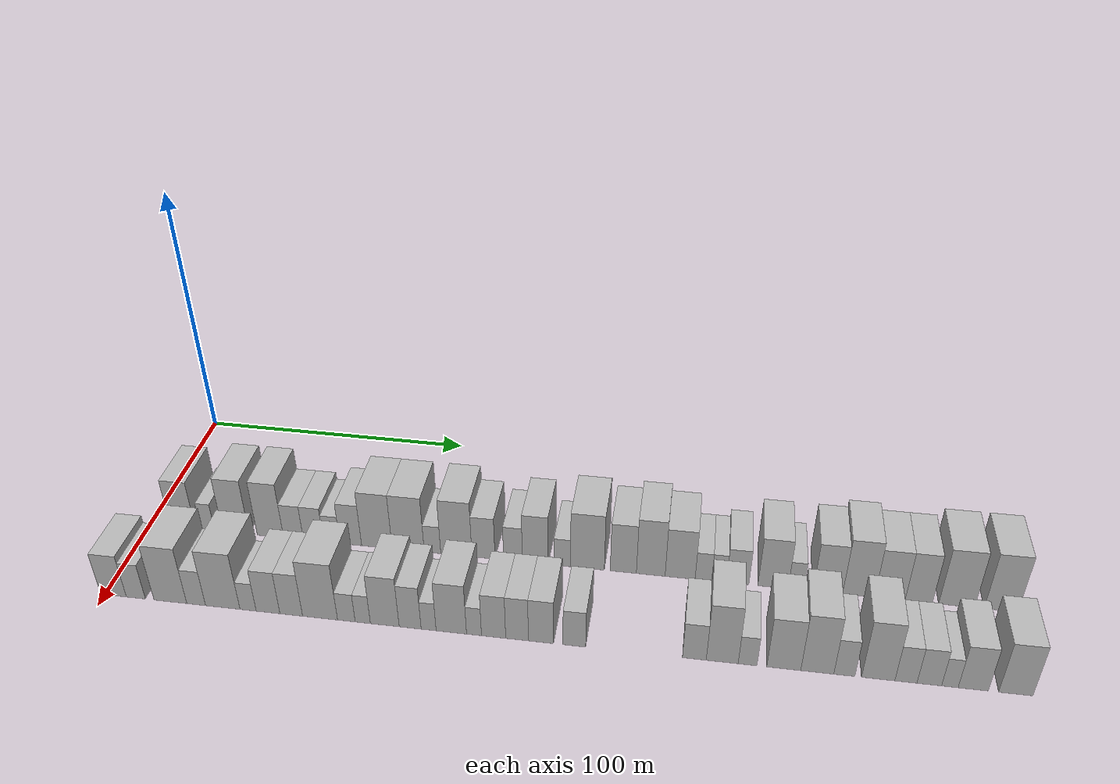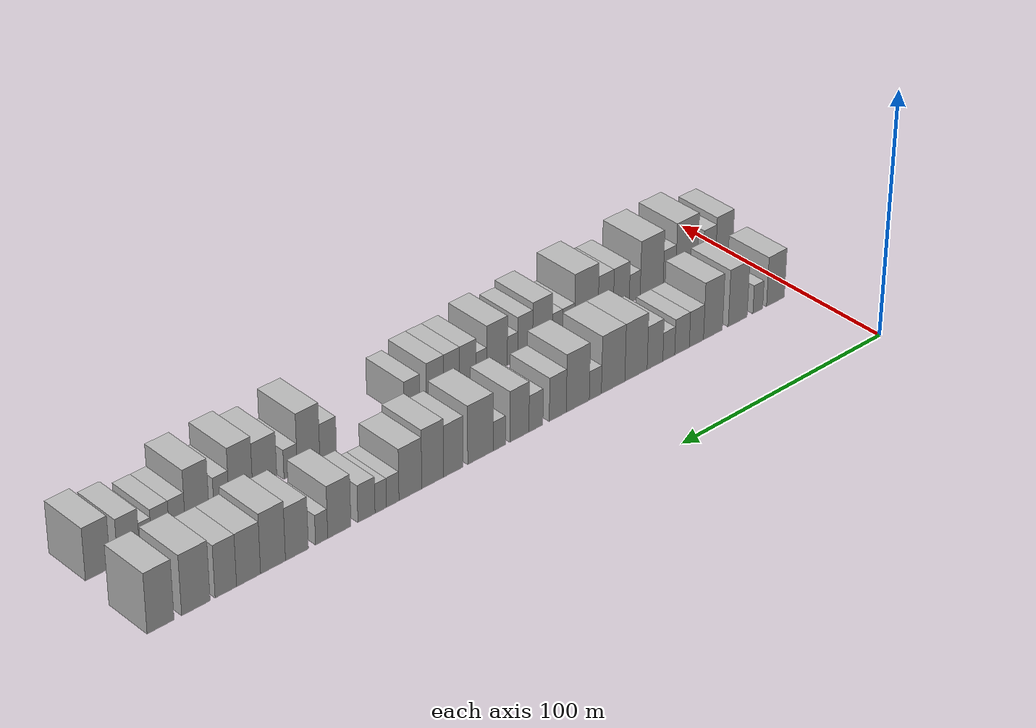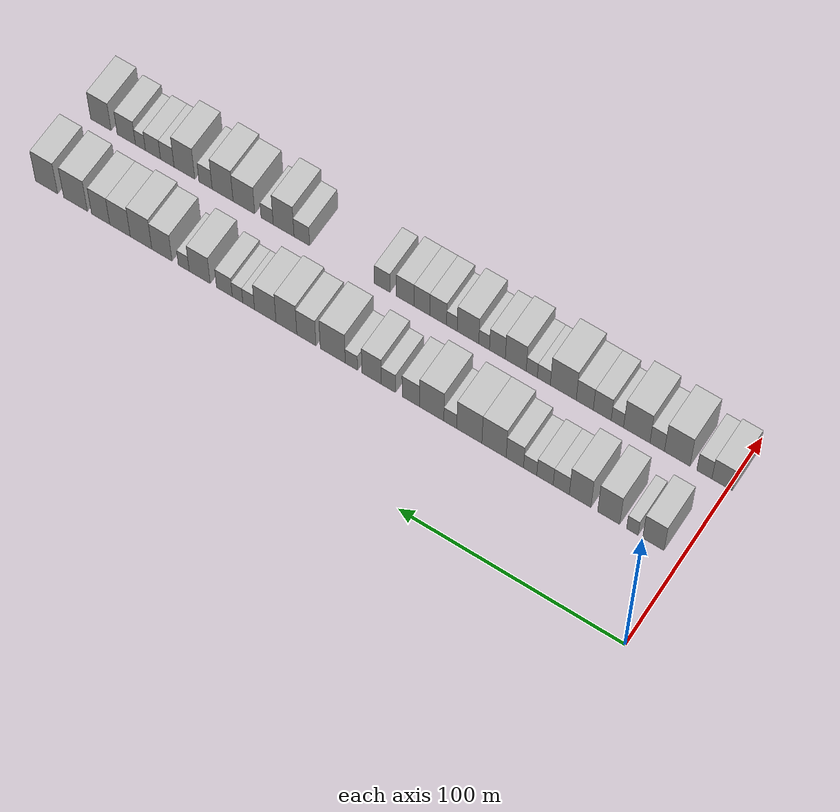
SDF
<sdf version="1.6">
 <world name="default">
  <model name="building_32">
   <static>1</static>
   <pose>50.0000 12.0339 0 0.000000 0.000000 0.000000</pose>
   <link name="link">
    <pose>0 0 10.50 0 0 0</pose>
    <collision name="collision"><geometry><box><size>20.0000 9.3732 21.0000</size></box></geometry></collision>
    <visual name="visual">
     <cast_shadows>0</cast_shadows>
     <geometry><box><size>20.0000 9.3732 21.0000</size></box></geometry>
     <material>
      <script>
       <uri>model://HANNAS_wall/materials/scripts</uri>
       <uri>model://HANNAS_wall/materials/textures</uri>
       <name>vrc/HANNAS_wall</name>
      </script>
     </material>
    </visual>
   </link>
  </model>
  <model name="building_33">
   <static>1</static>
   <pose>50.0000 21.2638 0 0.000000 0.000000 0.000000</pose>
   <link name="link">
    <pose>0 0 6.00 0 0 0</pose>
    <collision name="collision"><geometry><box><size>20.0000 5.0866 12.0000</size></box></geometry></collision>
    <visual name="visual">
     <cast_shadows>0</cast_shadows>
     <geometry><box><size>20.0000 5.0866 12.0000</size></box></geometry>
     <material>
      <script>
       <uri>model://HANNAS_wall/materials/scripts</uri>
       <uri>model://HANNAS_wall/materials/textures</uri>
       <name>vrc/HANNAS_wall</name>
      </script>
     </material>
    </visual>
   </link>
  </model>
  <model name="building_34">
   <static>1</static>
   <pose>50.0000 31.6727 0 0.000000 0.000000 0.000000</pose>
   <link name="link">
    <pose>0 0 12.00 0 0 0</pose>
    <collision name="collision"><geometry><box><size>20.0000 9.7312 24.0000</size></box></geometry></collision>
    <visual name="visual">
     <cast_shadows>0</cast_shadows>
     <geometry><box><size>20.0000 9.7312 24.0000</size></box></geometry>
     <material>
      <script>
       <uri>model://HANNAS_wall/materials/scripts</uri>
       <uri>model://HANNAS_wall/materials/textures</uri>
       <name>vrc/HANNAS_wall</name>
      </script>
     </material>
    </visual>
   </link>
  </model>
  <model name="building_35">
   <static>1</static>
   <pose>50.0000 44.3446 0 0.000000 0.000000 0.000000</pose>
   <link name="link">
    <pose>0 0 12.00 0 0 0</pose>
    <collision name="collision"><geometry><box><size>20.0000 9.6127 24.0000</size></box></geometry></collision>
    <visual name="visual">
     <cast_shadows>0</cast_shadows>
     <geometry><box><size>20.0000 9.6127 24.0000</size></box></geometry>
     <material>
      <script>
       <uri>model://HANNAS_wall/materials/scripts</uri>
       <uri>model://HANNAS_wall/materials/textures</uri>
       <name>vrc/HANNAS_wall</name>
      </script>
     </material>
    </visual>
   </link>
  </model>
  <model name="building_36">
   <static>1</static>
   <pose>50.0000 52.7396 0 0.000000 0.000000 0.000000</pose>
   <link name="link">
    <pose>0 0 7.50 0 0 0</pose>
    <collision name="collision"><geometry><box><size>20.0000 7.1774 15.0000</size></box></geometry></collision>
    <visual name="visual">
     <cast_shadows>0</cast_shadows>
     <geometry><box><size>20.0000 7.1774 15.0000</size></box></geometry>
     <material>
      <script>
       <uri>model://HANNAS_wall/materials/scripts</uri>
       <uri>model://HANNAS_wall/materials/textures</uri>
       <name>vrc/HANNAS_wall</name>
      </script>
     </material>
    </visual>
   </link>
  </model>
  <model name="building_37">
   <static>1</static>
   <pose>50.0000 59.9838 0 0.000000 0.000000 0.000000</pose>
   <link name="link">
    <pose>0 0 7.50 0 0 0</pose>
    <collision name="collision"><geometry><box><size>20.0000 7.3109 15.0000</size></box></geometry></collision>
    <visual name="visual">
     <cast_shadows>0</cast_shadows>
     <geometry><box><size>20.0000 7.3109 15.0000</size></box></geometry>
     <material>
      <script>
       <uri>model://HANNAS_wall/materials/scripts</uri>
       <uri>model://HANNAS_wall/materials/textures</uri>
       <name>vrc/HANNAS_wall</name>
      </script>
     </material>
    </visual>
   </link>
  </model>
  <model name="building_38">
   <static>1</static>
   <pose>50.0000 66.6029 0 0.000000 0.000000 0.000000</pose>
   <link name="link">
    <pose>0 0 6.00 0 0 0</pose>
    <collision name="collision"><geometry><box><size>20.0000 5.9274 12.0000</size></box></geometry></collision>
    <visual name="visual">
     <cast_shadows>0</cast_shadows>
     <geometry><box><size>20.0000 5.9274 12.0000</size></box></geometry>
     <material>
      <script>
       <uri>model://HANNAS_wall/materials/scripts</uri>
       <uri>model://HANNAS_wall/materials/textures</uri>
       <name>vrc/HANNAS_wall</name>
      </script>
     </material>
    </visual>
   </link>
  </model>
  <model name="building_39">
   <static>1</static>
   <pose>50.0000 73.4541 0 0.000000 0.000000 0.000000</pose>
   <link name="link">
    <pose>0 0 9.00 0 0 0</pose>
    <collision name="collision"><geometry><box><size>20.0000 7.7750 18.0000</size></box></geometry></collision>
    <visual name="visual">
     <cast_shadows>0</cast_shadows>
     <geometry><box><size>20.0000 7.7750 18.0000</size></box></geometry>
     <material>
      <script>
       <uri>model://HANNAS_wall/materials/scripts</uri>
       <uri>model://HANNAS_wall/materials/textures</uri>
       <name>vrc/HANNAS_wall</name>
      </script>
     </material>
    </visual>
   </link>
  </model>
  <model name="building_40">
   <static>1</static>
   <pose>50.0000 82.8072 0 0.000000 0.000000 0.000000</pose>
   <link name="link">
    <pose>0 0 12.00 0 0 0</pose>
    <collision name="collision"><geometry><box><size>20.0000 10.9311 24.0000</size></box></geometry></collision>
    <visual name="visual">
     <cast_shadows>0</cast_shadows>
     <geometry><box><size>20.0000 10.9311 24.0000</size></box></geometry>
     <material>
      <script>
       <uri>model://HANNAS_wall/materials/scripts</uri>
       <uri>model://HANNAS_wall/materials/textures</uri>
       <name>vrc/HANNAS_wall</name>
      </script>
     </material>
    </visual>
   </link>
  </model>
  <model name="building_41">
   <static>1</static>
   <pose>50.0000 93.9608 0 0.000000 0.000000 0.000000</pose>
   <link name="link">
    <pose>0 0 12.00 0 0 0</pose>
    <collision name="collision"><geometry><box><size>20.0000 11.3762 24.0000</size></box></geometry></collision>
    <visual name="visual">
     <cast_shadows>0</cast_shadows>
     <geometry><box><size>20.0000 11.3762 24.0000</size></box></geometry>
     <material>
      <script>
       <uri>model://HANNAS_wall/materials/scripts</uri>
       <uri>model://HANNAS_wall/materials/textures</uri>
       <name>vrc/HANNAS_wall</name>
      </script>
     </material>
    </visual>
   </link>
  </model>
  <model name="building_42">
   <static>1</static>
   <pose>50.0000 102.5587 0 0.000000 0.000000 0.000000</pose>
   <link name="link">
    <pose>0 0 6.00 0 0 0</pose>
    <collision name="collision"><geometry><box><size>20.0000 5.8196 12.0000</size></box></geometry></collision>
    <visual name="visual">
     <cast_shadows>0</cast_shadows>
     <geometry><box><size>20.0000 5.8196 12.0000</size></box></geometry>
     <material>
      <script>
       <uri>model://HANNAS_wall/materials/scripts</uri>
       <uri>model://HANNAS_wall/materials/textures</uri>
       <name>vrc/HANNAS_wall</name>
      </script>
     </material>
    </visual>
   </link>
  </model>
  <model name="building_43">
   <static>1</static>
   <pose>50.0000 110.9548 0 0.000000 0.000000 0.000000</pose>
   <link name="link">
    <pose>0 0 12.00 0 0 0</pose>
    <collision name="collision"><geometry><box><size>20.0000 10.9727 24.0000</size></box></geometry></collision>
    <visual name="visual">
     <cast_shadows>0</cast_shadows>
     <geometry><box><size>20.0000 10.9727 24.0000</size></box></geometry>
     <material>
      <script>
       <uri>model://HANNAS_wall/materials/scripts</uri>
       <uri>model://HANNAS_wall/materials/textures</uri>
       <name>vrc/HANNAS_wall</name>
      </script>
     </material>
    </visual>
   </link>
  </model>
  <model name="building_44">
   <static>1</static>
   <pose>50.0000 120.4621 0 0.000000 0.000000 0.000000</pose>
   <link name="link">
    <pose>0 0 9.00 0 0 0</pose>
    <collision name="collision"><geometry><box><size>20.0000 8.0419 18.0000</size></box></geometry></collision>
    <visual name="visual">
     <cast_shadows>0</cast_shadows>
     <geometry><box><size>20.0000 8.0419 18.0000</size></box></geometry>
     <material>
      <script>
       <uri>model://HANNAS_wall/materials/scripts</uri>
       <uri>model://HANNAS_wall/materials/textures</uri>
       <name>vrc/HANNAS_wall</name>
      </script>
     </material>
    </visual>
   </link>
  </model>
  <model name="building_45">
   <static>1</static>
   <pose>50.0000 130.7386 0 0.000000 0.000000 0.000000</pose>
   <link name="link">
    <pose>0 0 7.50 0 0 0</pose>
    <collision name="collision"><geometry><box><size>20.0000 6.5112 15.0000</size></box></geometry></collision>
    <visual name="visual">
     <cast_shadows>0</cast_shadows>
     <geometry><box><size>20.0000 6.5112 15.0000</size></box></geometry>
     <material>
      <script>
       <uri>model://HANNAS_wall/materials/scripts</uri>
       <uri>model://HANNAS_wall/materials/textures</uri>
       <name>vrc/HANNAS_wall</name>
      </script>
     </material>
    </visual>
   </link>
  </model>
  <model name="building_46">
   <static>1</static>
   <pose>50.0000 138.4492 0 0.000000 0.000000 0.000000</pose>
   <link name="link">
    <pose>0 0 10.50 0 0 0</pose>
    <collision name="collision"><geometry><box><size>20.0000 8.9101 21.0000</size></box></geometry></collision>
    <visual name="visual">
     <cast_shadows>0</cast_shadows>
     <geometry><box><size>20.0000 8.9101 21.0000</size></box></geometry>
     <material>
      <script>
       <uri>model://HANNAS_wall/materials/scripts</uri>
       <uri>model://HANNAS_wall/materials/textures</uri>
       <name>vrc/HANNAS_wall</name>
      </script>
     </material>
    </visual>
   </link>
  </model>
  <model name="building_47">
   <static>1</static>
   <pose>50.0000 147.7427 0 0.000000 0.000000 0.000000</pose>
   <link name="link">
    <pose>0 0 6.00 0 0 0</pose>
    <collision name="collision"><geometry><box><size>20.0000 5.6769 12.0000</size></box></geometry></collision>
    <visual name="visual">
     <cast_shadows>0</cast_shadows>
     <geometry><box><size>20.0000 5.6769 12.0000</size></box></geometry>
     <material>
      <script>
       <uri>model://HANNAS_wall/materials/scripts</uri>
       <uri>model://HANNAS_wall/materials/textures</uri>
       <name>vrc/HANNAS_wall</name>
      </script>
     </material>
    </visual>
   </link>
  </model>
  <model name="building_48">
   <static>1</static>
   <pose>50.0000 156.3697 0 0.000000 0.000000 0.000000</pose>
   <link name="link">
    <pose>0 0 12.00 0 0 0</pose>
    <collision name="collision"><geometry><box><size>20.0000 11.5769 24.0000</size></box></geometry></collision>
    <visual name="visual">
     <cast_shadows>0</cast_shadows>
     <geometry><box><size>20.0000 11.5769 24.0000</size></box></geometry>
     <material>
      <script>
       <uri>model://HANNAS_wall/materials/scripts</uri>
       <uri>model://HANNAS_wall/materials/textures</uri>
       <name>vrc/HANNAS_wall</name>
      </script>
     </material>
    </visual>
   </link>
  </model>
  <model name="building_49">
   <static>1</static>
   <pose>50.0000 168.6002 0 0.000000 0.000000 0.000000</pose>
   <link name="link">
    <pose>0 0 10.50 0 0 0</pose>
    <collision name="collision"><geometry><box><size>20.0000 8.8840 21.0000</size></box></geometry></collision>
    <visual name="visual">
     <cast_shadows>0</cast_shadows>
     <geometry><box><size>20.0000 8.8840 21.0000</size></box></geometry>
     <material>
      <script>
       <uri>model://HANNAS_wall/materials/scripts</uri>
       <uri>model://HANNAS_wall/materials/textures</uri>
       <name>vrc/HANNAS_wall</name>
      </script>
     </material>
    </visual>
   </link>
  </model>
  <model name="building_50">
   <static>1</static>
   <pose>50.0000 177.8979 0 0.000000 0.000000 0.000000</pose>
   <link name="link">
    <pose>0 0 12.00 0 0 0</pose>
    <collision name="collision"><geometry><box><size>20.0000 9.7113 24.0000</size></box></geometry></collision>
    <visual name="visual">
     <cast_shadows>0</cast_shadows>
     <geometry><box><size>20.0000 9.7113 24.0000</size></box></geometry>
     <material>
      <script>
       <uri>model://HANNAS_wall/materials/scripts</uri>
       <uri>model://HANNAS_wall/materials/textures</uri>
       <name>vrc/HANNAS_wall</name>
      </script>
     </material>
    </visual>
   </link>
  </model>
  <model name="building_51">
   <static>1</static>
   <pose>50.0000 187.7875 0 0.000000 0.000000 0.000000</pose>
   <link name="link">
    <pose>0 0 10.50 0 0 0</pose>
    <collision name="collision"><geometry><box><size>20.0000 10.0679 21.0000</size></box></geometry></collision>
    <visual name="visual">
     <cast_shadows>0</cast_shadows>
     <geometry><box><size>20.0000 10.0679 21.0000</size></box></geometry>
     <material>
      <script>
       <uri>model://HANNAS_wall/materials/scripts</uri>
       <uri>model://HANNAS_wall/materials/textures</uri>
       <name>vrc/HANNAS_wall</name>
      </script>
     </material>
    </visual>
   </link>
  </model>
  <model name="building_52">
   <static>1</static>
   <pose>50.0000 195.5727 0 0.000000 0.000000 0.000000</pose>
   <link name="link">
    <pose>0 0 6.00 0 0 0</pose>
    <collision name="collision"><geometry><box><size>20.0000 5.5025 12.0000</size></box></geometry></collision>
    <visual name="visual">
     <cast_shadows>0</cast_shadows>
     <geometry><box><size>20.0000 5.5025 12.0000</size></box></geometry>
     <material>
      <script>
       <uri>model://HANNAS_wall/materials/scripts</uri>
       <uri>model://HANNAS_wall/materials/textures</uri>
       <name>vrc/HANNAS_wall</name>
      </script>
     </material>
    </visual>
   </link>
  </model>
  <model name="building_53">
   <static>1</static>
   <pose>50.0000 200.8041 0 0.000000 0.000000 0.000000</pose>
   <link name="link">
    <pose>0 0 6.00 0 0 0</pose>
    <collision name="collision"><geometry><box><size>20.0000 4.9603 12.0000</size></box></geometry></collision>
    <visual name="visual">
     <cast_shadows>0</cast_shadows>
     <geometry><box><size>20.0000 4.9603 12.0000</size></box></geometry>
     <material>
      <script>
       <uri>model://HANNAS_wall/materials/scripts</uri>
       <uri>model://HANNAS_wall/materials/textures</uri>
       <name>vrc/HANNAS_wall</name>
      </script>
     </material>
    </visual>
   </link>
  </model>
  <model name="building_54">
   <static>1</static>
   <pose>50.0000 206.9999 0 0.000000 0.000000 0.000000</pose>
   <link name="link">
    <pose>0 0 7.50 0 0 0</pose>
    <collision name="collision"><geometry><box><size>20.0000 7.4313 15.0000</size></box></geometry></collision>
    <visual name="visual">
     <cast_shadows>0</cast_shadows>
     <geometry><box><size>20.0000 7.4313 15.0000</size></box></geometry>
     <material>
      <script>
       <uri>model://HANNAS_wall/materials/scripts</uri>
       <uri>model://HANNAS_wall/materials/textures</uri>
       <name>vrc/HANNAS_wall</name>
      </script>
     </material>
    </visual>
   </link>
  </model>
  <model name="building_55">
   <static>1</static>
   <pose>50.0000 218.6773 0 0.000000 0.000000 0.000000</pose>
   <link name="link">
    <pose>0 0 10.50 0 0 0</pose>
    <collision name="collision"><geometry><box><size>20.0000 9.9233 21.0000</size></box></geometry></collision>
    <visual name="visual">
     <cast_shadows>0</cast_shadows>
     <geometry><box><size>20.0000 9.9233 21.0000</size></box></geometry>
     <material>
      <script>
       <uri>model://HANNAS_wall/materials/scripts</uri>
       <uri>model://HANNAS_wall/materials/textures</uri>
       <name>vrc/HANNAS_wall</name>
      </script>
     </material>
    </visual>
   </link>
  </model>
  <model name="building_56">
   <static>1</static>
   <pose>50.0000 226.2310 0 0.000000 0.000000 0.000000</pose>
   <link name="link">
    <pose>0 0 6.00 0 0 0</pose>
    <collision name="collision"><geometry><box><size>20.0000 5.1842 12.0000</size></box></geometry></collision>
    <visual name="visual">
     <cast_shadows>0</cast_shadows>
     <geometry><box><size>20.0000 5.1842 12.0000</size></box></geometry>
     <material>
      <script>
       <uri>model://HANNAS_wall/materials/scripts</uri>
       <uri>model://HANNAS_wall/materials/textures</uri>
       <name>vrc/HANNAS_wall</name>
      </script>
     </material>
    </visual>
   </link>
  </model>
  <model name="building_57">
   <static>1</static>
   <pose>50.0000 236.6335 0 0.000000 0.000000 0.000000</pose>
   <link name="link">
    <pose>0 0 10.50 0 0 0</pose>
    <collision name="collision"><geometry><box><size>20.0000 9.6206 21.0000</size></box></geometry></collision>
    <visual name="visual">
     <cast_shadows>0</cast_shadows>
     <geometry><box><size>20.0000 9.6206 21.0000</size></box></geometry>
     <material>
      <script>
       <uri>model://HANNAS_wall/materials/scripts</uri>
       <uri>model://HANNAS_wall/materials/textures</uri>
       <name>vrc/HANNAS_wall</name>
      </script>
     </material>
    </visual>
   </link>
  </model>
  <model name="building_58">
   <static>1</static>
   <pose>50.0000 246.6107 0 0.000000 0.000000 0.000000</pose>
   <link name="link">
    <pose>0 0 12.00 0 0 0</pose>
    <collision name="collision"><geometry><box><size>20.0000 10.3339 24.0000</size></box></geometry></collision>
    <visual name="visual">
     <cast_shadows>0</cast_shadows>
     <geometry><box><size>20.0000 10.3339 24.0000</size></box></geometry>
     <material>
      <script>
       <uri>model://HANNAS_wall/materials/scripts</uri>
       <uri>model://HANNAS_wall/materials/textures</uri>
       <name>vrc/HANNAS_wall</name>
      </script>
     </material>
    </visual>
   </link>
  </model>
  <model name="building_59">
   <static>1</static>
   <pose>50.0000 256.7192 0 0.000000 0.000000 0.000000</pose>
   <link name="link">
    <pose>0 0 10.50 0 0 0</pose>
    <collision name="collision"><geometry><box><size>20.0000 9.8830 21.0000</size></box></geometry></collision>
    <visual name="visual">
     <cast_shadows>0</cast_shadows>
     <geometry><box><size>20.0000 9.8830 21.0000</size></box></geometry>
     <material>
      <script>
       <uri>model://HANNAS_wall/materials/scripts</uri>
       <uri>model://HANNAS_wall/materials/textures</uri>
       <name>vrc/HANNAS_wall</name>
      </script>
     </material>
    </visual>
   </link>
  </model>
  <model name="building_60">
   <static>1</static>
   <pose>50.0000 266.0381 0 0.000000 0.000000 0.000000</pose>
   <link name="link">
    <pose>0 0 10.50 0 0 0</pose>
    <collision name="collision"><geometry><box><size>20.0000 8.7548 21.0000</size></box></geometry></collision>
    <visual name="visual">
     <cast_shadows>0</cast_shadows>
     <geometry><box><size>20.0000 8.7548 21.0000</size></box></geometry>
     <material>
      <script>
       <uri>model://HANNAS_wall/materials/scripts</uri>
       <uri>model://HANNAS_wall/materials/textures</uri>
       <name>vrc/HANNAS_wall</name>
      </script>
     </material>
    </visual>
   </link>
  </model>
  <model name="building_61">
   <static>1</static>
   <pose>50.0000 278.1423 0 0.000000 0.000000 0.000000</pose>
   <link name="link">
    <pose>0 0 12.00 0 0 0</pose>
    <collision name="collision"><geometry><box><size>20.0000 11.4537 24.0000</size></box></geometry></collision>
    <visual name="visual">
     <cast_shadows>0</cast_shadows>
     <geometry><box><size>20.0000 11.4537 24.0000</size></box></geometry>
     <material>
      <script>
       <uri>model://HANNAS_wall/materials/scripts</uri>
       <uri>model://HANNAS_wall/materials/textures</uri>
       <name>vrc/HANNAS_wall</name>
      </script>
     </material>
    </visual>
   </link>
  </model>
  <model name="building_62">
   <static>1</static>
   <pose>50.0000 292.2194 0 0.000000 0.000000 0.000000</pose>
   <link name="link">
    <pose>0 0 12.00 0 0 0</pose>
    <collision name="collision"><geometry><box><size>20.0000 10.7004 24.0000</size></box></geometry></collision>
    <visual name="visual">
     <cast_shadows>0</cast_shadows>
     <geometry><box><size>20.0000 10.7004 24.0000</size></box></geometry>
     <material>
      <script>
       <uri>model://HANNAS_wall/materials/scripts</uri>
       <uri>model://HANNAS_wall/materials/textures</uri>
       <name>vrc/HANNAS_wall</name>
      </script>
     </material>
    </visual>
   </link>
  </model>
  <model name="building_95">
   <static>1</static>
   <pose>85.0000 2.8340 0 0.000000 0.000000 0.000000</pose>
   <link name="link">
    <pose>0 0 9.00 0 0 0</pose>
    <collision name="collision"><geometry><box><size>20.0000 8.9990 18.0000</size></box></geometry></collision>
    <visual name="visual">
     <cast_shadows>0</cast_shadows>
     <geometry><box><size>20.0000 8.9990 18.0000</size></box></geometry>
     <material>
      <script>
       <uri>model://HANNAS_wall/materials/scripts</uri>
       <uri>model://HANNAS_wall/materials/textures</uri>
       <name>vrc/HANNAS_wall</name>
      </script>
     </material>
    </visual>
   </link>
  </model>
  <model name="building_96">
   <static>1</static>
   <pose>85.0000 10.6421 0 0.000000 0.000000 0.000000</pose>
   <link name="link">
    <pose>0 0 7.50 0 0 0</pose>
    <collision name="collision"><geometry><box><size>20.0000 6.6173 15.0000</size></box></geometry></collision>
    <visual name="visual">
     <cast_shadows>0</cast_shadows>
     <geometry><box><size>20.0000 6.6173 15.0000</size></box></geometry>
     <material>
      <script>
       <uri>model://HANNAS_wall/materials/scripts</uri>
       <uri>model://HANNAS_wall/materials/textures</uri>
       <name>vrc/HANNAS_wall</name>
      </script>
     </material>
    </visual>
   </link>
  </model>
  <model name="building_97">
   <static>1</static>
   <pose>85.0000 22.6172 0 0.000000 0.000000 0.000000</pose>
   <link name="link">
    <pose>0 0 12.00 0 0 0</pose>
    <collision name="collision"><geometry><box><size>20.0000 11.3329 24.0000</size></box></geometry></collision>
    <visual name="visual">
     <cast_shadows>0</cast_shadows>
     <geometry><box><size>20.0000 11.3329 24.0000</size></box></geometry>
     <material>
      <script>
       <uri>model://HANNAS_wall/materials/scripts</uri>
       <uri>model://HANNAS_wall/materials/textures</uri>
       <name>vrc/HANNAS_wall</name>
      </script>
     </material>
    </visual>
   </link>
  </model>
  <model name="building_98">
   <static>1</static>
   <pose>85.0000 31.5112 0 0.000000 0.000000 0.000000</pose>
   <link name="link">
    <pose>0 0 7.50 0 0 0</pose>
    <collision name="collision"><geometry><box><size>20.0000 6.4552 15.0000</size></box></geometry></collision>
    <visual name="visual">
     <cast_shadows>0</cast_shadows>
     <geometry><box><size>20.0000 6.4552 15.0000</size></box></geometry>
     <material>
      <script>
       <uri>model://HANNAS_wall/materials/scripts</uri>
       <uri>model://HANNAS_wall/materials/textures</uri>
       <name>vrc/HANNAS_wall</name>
      </script>
     </material>
    </visual>
   </link>
  </model>
  <model name="building_99">
   <static>1</static>
   <pose>85.0000 40.6259 0 0.000000 0.000000 0.000000</pose>
   <link name="link">
    <pose>0 0 12.00 0 0 0</pose>
    <collision name="collision"><geometry><box><size>20.0000 11.7742 24.0000</size></box></geometry></collision>
    <visual name="visual">
     <cast_shadows>0</cast_shadows>
     <geometry><box><size>20.0000 11.7742 24.0000</size></box></geometry>
     <material>
      <script>
       <uri>model://HANNAS_wall/materials/scripts</uri>
       <uri>model://HANNAS_wall/materials/textures</uri>
       <name>vrc/HANNAS_wall</name>
      </script>
     </material>
    </visual>
   </link>
  </model>
  <model name="building_100">
   <static>1</static>
   <pose>85.0000 49.2663 0 0.000000 0.000000 0.000000</pose>
   <link name="link">
    <pose>0 0 6.00 0 0 0</pose>
    <collision name="collision"><geometry><box><size>20.0000 5.5065 12.0000</size></box></geometry></collision>
    <visual name="visual">
     <cast_shadows>0</cast_shadows>
     <geometry><box><size>20.0000 5.5065 12.0000</size></box></geometry>
     <material>
      <script>
       <uri>model://HANNAS_wall/materials/scripts</uri>
       <uri>model://HANNAS_wall/materials/textures</uri>
       <name>vrc/HANNAS_wall</name>
      </script>
     </material>
    </visual>
   </link>
  </model>
  <model name="building_101">
   <static>1</static>
   <pose>85.0000 56.0345 0 0.000000 0.000000 0.000000</pose>
   <link name="link">
    <pose>0 0 9.00 0 0 0</pose>
    <collision name="collision"><geometry><box><size>20.0000 8.0299 18.0000</size></box></geometry></collision>
    <visual name="visual">
     <cast_shadows>0</cast_shadows>
     <geometry><box><size>20.0000 8.0299 18.0000</size></box></geometry>
     <material>
      <script>
       <uri>model://HANNAS_wall/materials/scripts</uri>
       <uri>model://HANNAS_wall/materials/textures</uri>
       <name>vrc/HANNAS_wall</name>
      </script>
     </material>
    </visual>
   </link>
  </model>
  <model name="building_102">
   <static>1</static>
   <pose>85.0000 63.8744 0 0.000000 0.000000 0.000000</pose>
   <link name="link">
    <pose>0 0 9.00 0 0 0</pose>
    <collision name="collision"><geometry><box><size>20.0000 7.6501 18.0000</size></box></geometry></collision>
    <visual name="visual">
     <cast_shadows>0</cast_shadows>
     <geometry><box><size>20.0000 7.6501 18.0000</size></box></geometry>
     <material>
      <script>
       <uri>model://HANNAS_wall/materials/scripts</uri>
       <uri>model://HANNAS_wall/materials/textures</uri>
       <name>vrc/HANNAS_wall</name>
      </script>
     </material>
    </visual>
   </link>
  </model>
  <model name="building_103">
   <static>1</static>
   <pose>85.0000 73.5528 0 0.000000 0.000000 0.000000</pose>
   <link name="link">
    <pose>0 0 12.00 0 0 0</pose>
    <collision name="collision"><geometry><box><size>20.0000 11.7066 24.0000</size></box></geometry></collision>
    <visual name="visual">
     <cast_shadows>0</cast_shadows>
     <geometry><box><size>20.0000 11.7066 24.0000</size></box></geometry>
     <material>
      <script>
       <uri>model://HANNAS_wall/materials/scripts</uri>
       <uri>model://HANNAS_wall/materials/textures</uri>
       <name>vrc/HANNAS_wall</name>
      </script>
     </material>
    </visual>
   </link>
  </model>
  <model name="building_104">
   <static>1</static>
   <pose>85.0000 82.3478 0 0.000000 0.000000 0.000000</pose>
   <link name="link">
    <pose>0 0 6.00 0 0 0</pose>
    <collision name="collision"><geometry><box><size>20.0000 5.8835 12.0000</size></box></geometry></collision>
    <visual name="visual">
     <cast_shadows>0</cast_shadows>
     <geometry><box><size>20.0000 5.8835 12.0000</size></box></geometry>
     <material>
      <script>
       <uri>model://HANNAS_wall/materials/scripts</uri>
       <uri>model://HANNAS_wall/materials/textures</uri>
       <name>vrc/HANNAS_wall</name>
      </script>
     </material>
    </visual>
   </link>
  </model>
  <model name="building_105">
   <static>1</static>
   <pose>85.0000 87.8107 0 0.000000 0.000000 0.000000</pose>
   <link name="link">
    <pose>0 0 6.00 0 0 0</pose>
    <collision name="collision"><geometry><box><size>20.0000 5.0425 12.0000</size></box></geometry></collision>
    <visual name="visual">
     <cast_shadows>0</cast_shadows>
     <geometry><box><size>20.0000 5.0425 12.0000</size></box></geometry>
     <material>
      <script>
       <uri>model://HANNAS_wall/materials/scripts</uri>
       <uri>model://HANNAS_wall/materials/textures</uri>
       <name>vrc/HANNAS_wall</name>
      </script>
     </material>
    </visual>
   </link>
  </model>
  <model name="building_106">
   <static>1</static>
   <pose>85.0000 95.0874 0 0.000000 0.000000 0.000000</pose>
   <link name="link">
    <pose>0 0 10.50 0 0 0</pose>
    <collision name="collision"><geometry><box><size>20.0000 9.5108 21.0000</size></box></geometry></collision>
    <visual name="visual">
     <cast_shadows>0</cast_shadows>
     <geometry><box><size>20.0000 9.5108 21.0000</size></box></geometry>
     <material>
      <script>
       <uri>model://HANNAS_wall/materials/scripts</uri>
       <uri>model://HANNAS_wall/materials/textures</uri>
       <name>vrc/HANNAS_wall</name>
      </script>
     </material>
    </visual>
   </link>
  </model>
  <model name="building_107">
   <static>1</static>
   <pose>85.0000 103.4564 0 0.000000 0.000000 0.000000</pose>
   <link name="link">
    <pose>0 0 9.00 0 0 0</pose>
    <collision name="collision"><geometry><box><size>20.0000 7.2272 18.0000</size></box></geometry></collision>
    <visual name="visual">
     <cast_shadows>0</cast_shadows>
     <geometry><box><size>20.0000 7.2272 18.0000</size></box></geometry>
     <material>
      <script>
       <uri>model://HANNAS_wall/materials/scripts</uri>
       <uri>model://HANNAS_wall/materials/textures</uri>
       <name>vrc/HANNAS_wall</name>
      </script>
     </material>
    </visual>
   </link>
  </model>
  <model name="building_108">
   <static>1</static>
   <pose>85.0000 109.5166 0 0.000000 0.000000 0.000000</pose>
   <link name="link">
    <pose>0 0 6.00 0 0 0</pose>
    <collision name="collision"><geometry><box><size>20.0000 4.8930 12.0000</size></box></geometry></collision>
    <visual name="visual">
     <cast_shadows>0</cast_shadows>
     <geometry><box><size>20.0000 4.8930 12.0000</size></box></geometry>
     <material>
      <script>
       <uri>model://HANNAS_wall/materials/scripts</uri>
       <uri>model://HANNAS_wall/materials/textures</uri>
       <name>vrc/HANNAS_wall</name>
      </script>
     </material>
    </visual>
   </link>
  </model>
  <model name="building_109">
   <static>1</static>
   <pose>85.0000 116.9140 0 0.000000 0.000000 0.000000</pose>
   <link name="link">
    <pose>0 0 10.50 0 0 0</pose>
    <collision name="collision"><geometry><box><size>20.0000 9.9018 21.0000</size></box></geometry></collision>
    <visual name="visual">
     <cast_shadows>0</cast_shadows>
     <geometry><box><size>20.0000 9.9018 21.0000</size></box></geometry>
     <material>
      <script>
       <uri>model://HANNAS_wall/materials/scripts</uri>
       <uri>model://HANNAS_wall/materials/textures</uri>
       <name>vrc/HANNAS_wall</name>
      </script>
     </material>
    </visual>
   </link>
  </model>
  <model name="building_110">
   <static>1</static>
   <pose>85.0000 124.2970 0 0.000000 0.000000 0.000000</pose>
   <link name="link">
    <pose>0 0 6.00 0 0 0</pose>
    <collision name="collision"><geometry><box><size>20.0000 4.8642 12.0000</size></box></geometry></collision>
    <visual name="visual">
     <cast_shadows>0</cast_shadows>
     <geometry><box><size>20.0000 4.8642 12.0000</size></box></geometry>
     <material>
      <script>
       <uri>model://HANNAS_wall/materials/scripts</uri>
       <uri>model://HANNAS_wall/materials/textures</uri>
       <name>vrc/HANNAS_wall</name>
      </script>
     </material>
    </visual>
   </link>
  </model>
  <model name="building_111">
   <static>1</static>
   <pose>85.0000 130.6315 0 0.000000 0.000000 0.000000</pose>
   <link name="link">
    <pose>0 0 9.00 0 0 0</pose>
    <collision name="collision"><geometry><box><size>20.0000 7.8047 18.0000</size></box></geometry></collision>
    <visual name="visual">
     <cast_shadows>0</cast_shadows>
     <geometry><box><size>20.0000 7.8047 18.0000</size></box></geometry>
     <material>
      <script>
       <uri>model://HANNAS_wall/materials/scripts</uri>
       <uri>model://HANNAS_wall/materials/textures</uri>
       <name>vrc/HANNAS_wall</name>
      </script>
     </material>
    </visual>
   </link>
  </model>
  <model name="building_112">
   <static>1</static>
   <pose>85.0000 138.1927 0 0.000000 0.000000 0.000000</pose>
   <link name="link">
    <pose>0 0 9.00 0 0 0</pose>
    <collision name="collision"><geometry><box><size>20.0000 7.3177 18.0000</size></box></geometry></collision>
    <visual name="visual">
     <cast_shadows>0</cast_shadows>
     <geometry><box><size>20.0000 7.3177 18.0000</size></box></geometry>
     <material>
      <script>
       <uri>model://HANNAS_wall/materials/scripts</uri>
       <uri>model://HANNAS_wall/materials/textures</uri>
       <name>vrc/HANNAS_wall</name>
      </script>
     </material>
    </visual>
   </link>
  </model>
  <model name="building_113">
   <static>1</static>
   <pose>85.0000 145.8714 0 0.000000 0.000000 0.000000</pose>
   <link name="link">
    <pose>0 0 9.00 0 0 0</pose>
    <collision name="collision"><geometry><box><size>20.0000 8.0398 18.0000</size></box></geometry></collision>
    <visual name="visual">
     <cast_shadows>0</cast_shadows>
     <geometry><box><size>20.0000 8.0398 18.0000</size></box></geometry>
     <material>
      <script>
       <uri>model://HANNAS_wall/materials/scripts</uri>
       <uri>model://HANNAS_wall/materials/textures</uri>
       <name>vrc/HANNAS_wall</name>
      </script>
     </material>
    </visual>
   </link>
  </model>
  <model name="building_114">
   <static>1</static>
   <pose>85.0000 156.4998 0 0.000000 0.000000 0.000000</pose>
   <link name="link">
    <pose>0 0 7.50 0 0 0</pose>
    <collision name="collision"><geometry><box><size>20.0000 7.2170 15.0000</size></box></geometry></collision>
    <visual name="visual">
     <cast_shadows>0</cast_shadows>
     <geometry><box><size>20.0000 7.2170 15.0000</size></box></geometry>
     <material>
      <script>
       <uri>model://HANNAS_wall/materials/scripts</uri>
       <uri>model://HANNAS_wall/materials/textures</uri>
       <name>vrc/HANNAS_wall</name>
      </script>
     </material>
    </visual>
   </link>
  </model>
  <model name="building_115">
   <static>1</static>
   <pose>85.0000 194.1776 0 0.000000 0.000000 0.000000</pose>
   <link name="link">
    <pose>0 0 7.50 0 0 0</pose>
    <collision name="collision"><geometry><box><size>20.0000 7.3795 15.0000</size></box></geometry></collision>
    <visual name="visual">
     <cast_shadows>0</cast_shadows>
     <geometry><box><size>20.0000 7.3795 15.0000</size></box></geometry>
     <material>
      <script>
       <uri>model://HANNAS_wall/materials/scripts</uri>
       <uri>model://HANNAS_wall/materials/textures</uri>
       <name>vrc/HANNAS_wall</name>
      </script>
     </material>
    </visual>
   </link>
  </model>
  <model name="building_116">
   <static>1</static>
   <pose>85.0000 202.7923 0 0.000000 0.000000 0.000000</pose>
   <link name="link">
    <pose>0 0 12.00 0 0 0</pose>
    <collision name="collision"><geometry><box><size>20.0000 9.8500 24.0000</size></box></geometry></collision>
    <visual name="visual">
     <cast_shadows>0</cast_shadows>
     <geometry><box><size>20.0000 9.8500 24.0000</size></box></geometry>
     <material>
      <script>
       <uri>model://HANNAS_wall/materials/scripts</uri>
       <uri>model://HANNAS_wall/materials/textures</uri>
       <name>vrc/HANNAS_wall</name>
      </script>
     </material>
    </visual>
   </link>
  </model>
  <model name="building_117">
   <static>1</static>
   <pose>85.0000 210.6076 0 0.000000 0.000000 0.000000</pose>
   <link name="link">
    <pose>0 0 6.00 0 0 0</pose>
    <collision name="collision"><geometry><box><size>20.0000 5.7805 12.0000</size></box></geometry></collision>
    <visual name="visual">
     <cast_shadows>0</cast_shadows>
     <geometry><box><size>20.0000 5.7805 12.0000</size></box></geometry>
     <material>
      <script>
       <uri>model://HANNAS_wall/materials/scripts</uri>
       <uri>model://HANNAS_wall/materials/textures</uri>
       <name>vrc/HANNAS_wall</name>
      </script>
     </material>
    </visual>
   </link>
  </model>
  <model name="building_118">
   <static>1</static>
   <pose>85.0000 221.6714 0 0.000000 0.000000 0.000000</pose>
   <link name="link">
    <pose>0 0 10.50 0 0 0</pose>
    <collision name="collision"><geometry><box><size>20.0000 10.3471 21.0000</size></box></geometry></collision>
    <visual name="visual">
     <cast_shadows>0</cast_shadows>
     <geometry><box><size>20.0000 10.3471 21.0000</size></box></geometry>
     <material>
      <script>
       <uri>model://HANNAS_wall/materials/scripts</uri>
       <uri>model://HANNAS_wall/materials/textures</uri>
       <name>vrc/HANNAS_wall</name>
      </script>
     </material>
    </visual>
   </link>
  </model>
  <model name="building_119">
   <static>1</static>
   <pose>85.0000 231.8455 0 0.000000 0.000000 0.000000</pose>
   <link name="link">
    <pose>0 0 12.00 0 0 0</pose>
    <collision name="collision"><geometry><box><size>20.0000 10.0012 24.0000</size></box></geometry></collision>
    <visual name="visual">
     <cast_shadows>0</cast_shadows>
     <geometry><box><size>20.0000 10.0012 24.0000</size></box></geometry>
     <material>
      <script>
       <uri>model://HANNAS_wall/materials/scripts</uri>
       <uri>model://HANNAS_wall/materials/textures</uri>
       <name>vrc/HANNAS_wall</name>
      </script>
     </material>
    </visual>
   </link>
  </model>
  <model name="building_120">
   <static>1</static>
   <pose>85.0000 240.0154 0 0.000000 0.000000 0.000000</pose>
   <link name="link">
    <pose>0 0 7.50 0 0 0</pose>
    <collision name="collision"><geometry><box><size>20.0000 6.3385 15.0000</size></box></geometry></collision>
    <visual name="visual">
     <cast_shadows>0</cast_shadows>
     <geometry><box><size>20.0000 6.3385 15.0000</size></box></geometry>
     <material>
      <script>
       <uri>model://HANNAS_wall/materials/scripts</uri>
       <uri>model://HANNAS_wall/materials/textures</uri>
       <name>vrc/HANNAS_wall</name>
      </script>
     </material>
    </visual>
   </link>
  </model>
  <model name="building_121">
   <static>1</static>
   <pose>85.0000 250.1653 0 0.000000 0.000000 0.000000</pose>
   <link name="link">
    <pose>0 0 12.00 0 0 0</pose>
    <collision name="collision"><geometry><box><size>20.0000 9.9612 24.0000</size></box></geometry></collision>
    <visual name="visual">
     <cast_shadows>0</cast_shadows>
     <geometry><box><size>20.0000 9.9612 24.0000</size></box></geometry>
     <material>
      <script>
       <uri>model://HANNAS_wall/materials/scripts</uri>
       <uri>model://HANNAS_wall/materials/textures</uri>
       <name>vrc/HANNAS_wall</name>
      </script>
     </material>
    </visual>
   </link>
  </model>
  <model name="building_122">
   <static>1</static>
   <pose>85.0000 258.4333 0 0.000000 0.000000 0.000000</pose>
   <link name="link">
    <pose>0 0 7.50 0 0 0</pose>
    <collision name="collision"><geometry><box><size>20.0000 6.5749 15.0000</size></box></geometry></collision>
    <visual name="visual">
     <cast_shadows>0</cast_shadows>
     <geometry><box><size>20.0000 6.5749 15.0000</size></box></geometry>
     <material>
      <script>
       <uri>model://HANNAS_wall/materials/scripts</uri>
       <uri>model://HANNAS_wall/materials/textures</uri>
       <name>vrc/HANNAS_wall</name>
      </script>
     </material>
    </visual>
   </link>
  </model>
  <model name="building_123">
   <static>1</static>
   <pose>85.0000 265.3670 0 0.000000 0.000000 0.000000</pose>
   <link name="link">
    <pose>0 0 7.50 0 0 0</pose>
    <collision name="collision"><geometry><box><size>20.0000 7.2924 15.0000</size></box></geometry></collision>
    <visual name="visual">
     <cast_shadows>0</cast_shadows>
     <geometry><box><size>20.0000 7.2924 15.0000</size></box></geometry>
     <material>
      <script>
       <uri>model://HANNAS_wall/materials/scripts</uri>
       <uri>model://HANNAS_wall/materials/textures</uri>
       <name>vrc/HANNAS_wall</name>
      </script>
     </material>
    </visual>
   </link>
  </model>
  <model name="building_124">
   <static>1</static>
   <pose>85.0000 271.4552 0 0.000000 0.000000 0.000000</pose>
   <link name="link">
    <pose>0 0 6.00 0 0 0</pose>
    <collision name="collision"><geometry><box><size>20.0000 4.8840 12.0000</size></box></geometry></collision>
    <visual name="visual">
     <cast_shadows>0</cast_shadows>
     <geometry><box><size>20.0000 4.8840 12.0000</size></box></geometry>
     <material>
      <script>
       <uri>model://HANNAS_wall/materials/scripts</uri>
       <uri>model://HANNAS_wall/materials/textures</uri>
       <name>vrc/HANNAS_wall</name>
      </script>
     </material>
    </visual>
   </link>
  </model>
  <model name="building_125">
   <static>1</static>
   <pose>85.0000 278.3399 0 0.000000 0.000000 0.000000</pose>
   <link name="link">
    <pose>0 0 9.00 0 0 0</pose>
    <collision name="collision"><geometry><box><size>20.0000 8.8853 18.0000</size></box></geometry></collision>
    <visual name="visual">
     <cast_shadows>0</cast_shadows>
     <geometry><box><size>20.0000 8.8853 18.0000</size></box></geometry>
     <material>
      <script>
       <uri>model://HANNAS_wall/materials/scripts</uri>
       <uri>model://HANNAS_wall/materials/textures</uri>
       <name>vrc/HANNAS_wall</name>
      </script>
     </material>
    </visual>
   </link>
  </model>
  <model name="building_126">
   <static>1</static>
   <pose>85.0000 290.7631 0 0.000000 0.000000 0.000000</pose>
   <link name="link">
    <pose>0 0 10.50 0 0 0</pose>
    <collision name="collision"><geometry><box><size>20.0000 9.9610 21.0000</size></box></geometry></collision>
    <visual name="visual">
     <cast_shadows>0</cast_shadows>
     <geometry><box><size>20.0000 9.9610 21.0000</size></box></geometry>
     <material>
      <script>
       <uri>model://HANNAS_wall/materials/scripts</uri>
       <uri>model://HANNAS_wall/materials/textures</uri>
       <name>vrc/HANNAS_wall</name>
      </script>
     </material>
    </visual>
   </link>
  </model>
 </world>
</sdf>
